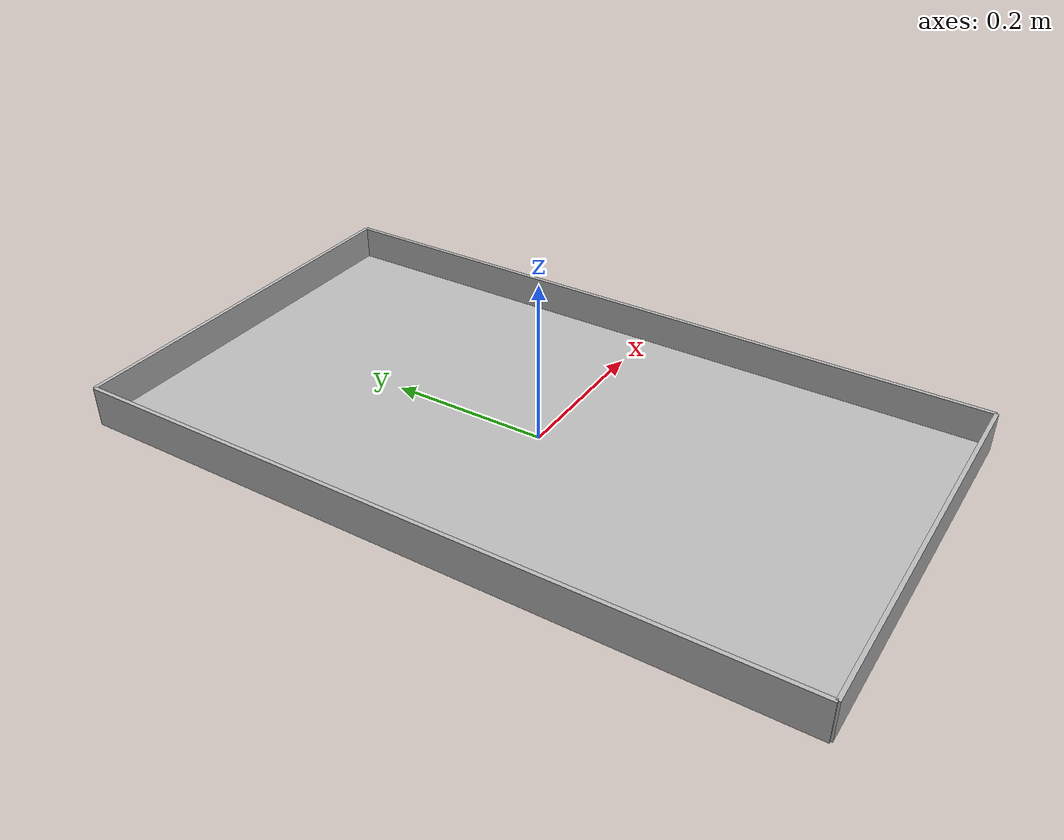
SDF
<?xml version="1.0"?>
<sdf version="1.7">
  <model name="workspace_basket">
    <static>true</static>

    <!-- Bottom -->
    <link name="bottom">
      <pose>0 0 0.00500 0 0 0</pose>

      <visual name="bottom_visual">
        <geometry>
          <box>
            <size>0.5 0.9 0.01</size>
          </box>
        </geometry>
        <material>
          <script>
            <uri>model://workspace_basket/materials/scripts</uri>
            <uri>model://workspace_basket/materials/textures</uri>
            <name>Label/Work_Space</name>
          </script>
        </material>
      </visual>

      <collision name="bottom_collision">
        <geometry>
          <box>
            <size>0.5 0.9 0.01</size>
          </box>
        </geometry>
        <surface>
          <contact>
            <ode>
              <kp>1e+06</kp>
              <kd>1</kd>
              <min_depth>0.001</min_depth>
            </ode>
          </contact>
          <friction>
            <ode>
              <mu>1</mu>
              <mu2>1</mu2>
            </ode>
          </friction>
        </surface>
      </collision>
    </link>

    <!-- Front wall (+y) -->
    <link name="wall_front">
      <pose>0 0.450000 0.027500 0 0 0</pose>
      <visual name="front_visual">
        <geometry><box><size>0.5 0.005 0.05</size></box></geometry>
      </visual>
      <collision name="front_collision">
        <geometry><box><size>0.5 0.005 0.05</size></box></geometry>
        <surface>
          <contact>
            <ode>
              <kp>1e+06</kp>
              <kd>1</kd>
              <min_depth>0.001</min_depth>
            </ode>
          </contact>
          <friction>
            <ode>
              <mu>1</mu>
              <mu2>1</mu2>
            </ode>
          </friction>
        </surface>
      </collision>
    </link>

    <!-- Back wall (-y) -->
    <link name="wall_back">
      <pose>0 -0.450000 0.027500 0 0 0</pose>
      <visual name="back_visual">
        <geometry><box><size>0.5 0.005 0.05</size></box></geometry>
      </visual>
      <collision name="back_collision">
        <geometry><box><size>0.5 0.005 0.05</size></box></geometry>
        <surface>
          <contact>
            <ode>
              <kp>1e+06</kp>
              <kd>1</kd>
              <min_depth>0.001</min_depth>
            </ode>
          </contact>
          <friction>
            <ode>
              <mu>1</mu>
              <mu2>1</mu2>
            </ode>
          </friction>
        </surface>
      </collision>
    </link>

    <!-- Left wall (+x) -->
    <link name="wall_left">
      <pose>0.250000 0 0.027500 0 0 0</pose>
      <visual name="left_visual">
        <geometry><box><size>0.005 0.9 0.05</size></box></geometry>
      </visual>
      <collision name="left_collision">
        <geometry><box><size>0.005 0.9 0.05</size></box></geometry>
        <surface>
          <contact>
            <ode>
              <kp>1e+06</kp>
              <kd>1</kd>
              <min_depth>0.001</min_depth>
            </ode>
          </contact>
          <friction>
            <ode>
              <mu>1</mu>
              <mu2>1</mu2>
            </ode>
          </friction>
        </surface>
      </collision>
    </link>

    <!-- Right wall (-x) -->
    <link name="wall_right">
      <pose>-0.250000 0 0.027500 0 0 0</pose>
      <visual name="right_visual">
        <geometry><box><size>0.005 0.9 0.05</size></box></geometry>
      </visual>
      <collision name="right_collision">
        <geometry><box><size>0.005 0.9 0.05</size></box></geometry>
        <surface>
          <contact>
            <ode>
              <kp>1e+06</kp>
              <kd>1</kd>
              <min_depth>0.001</min_depth>
            </ode>
          </contact>
          <friction>
            <ode>
              <mu>1</mu>
              <mu2>1</mu2>
            </ode>
          </friction>
        </surface>
      </collision>
    </link>

  </model>
</sdf>
